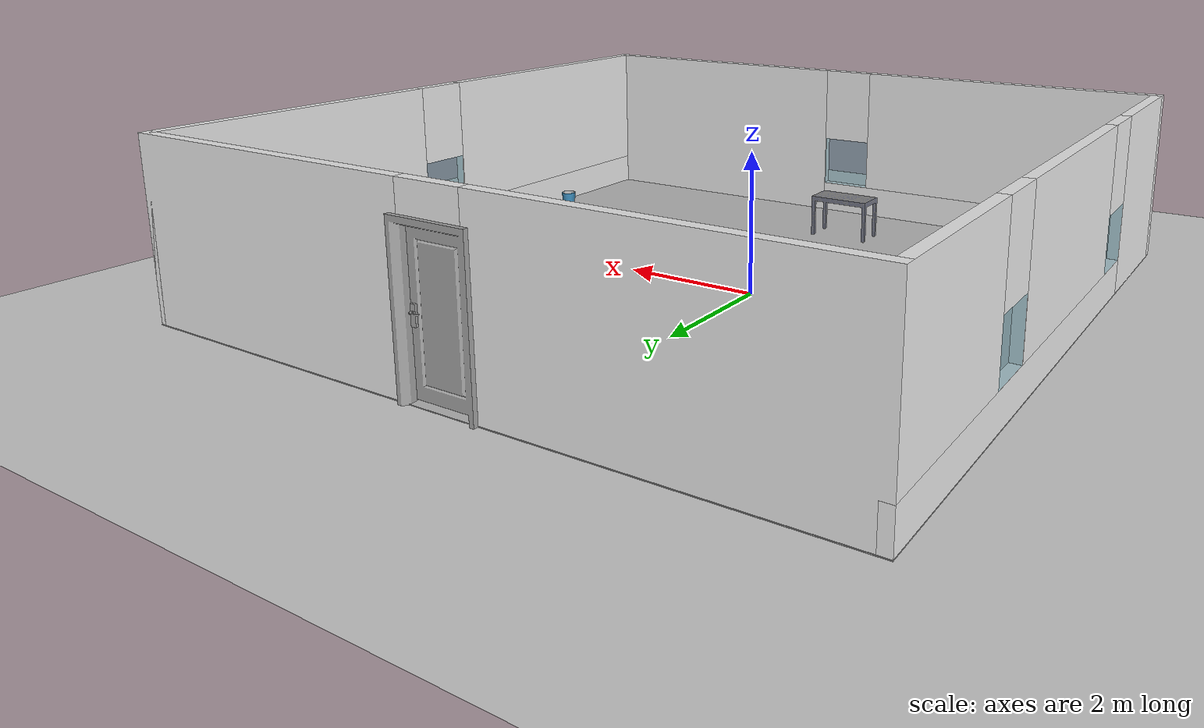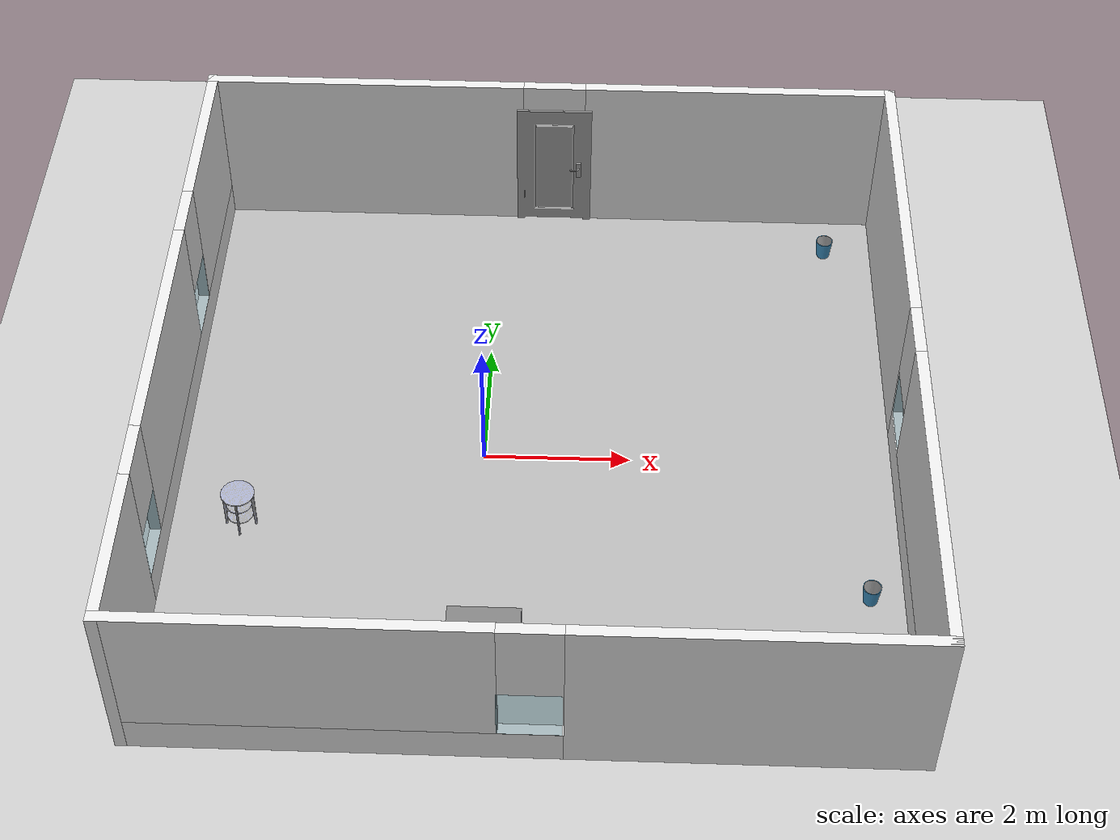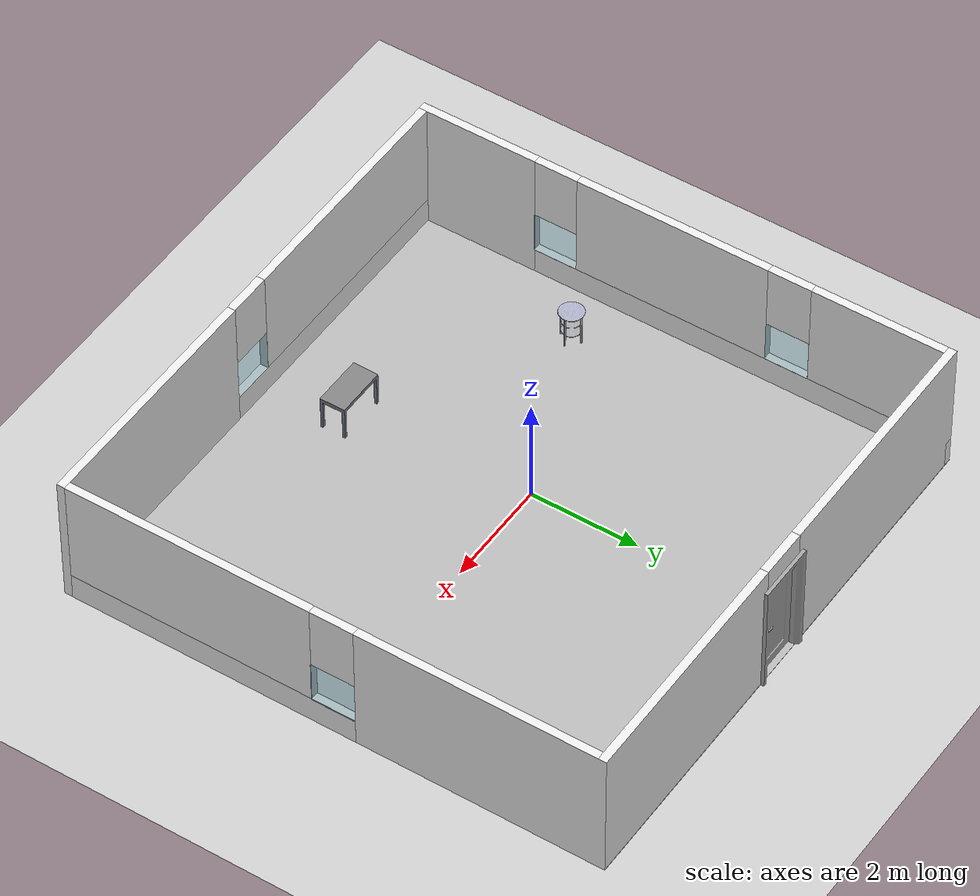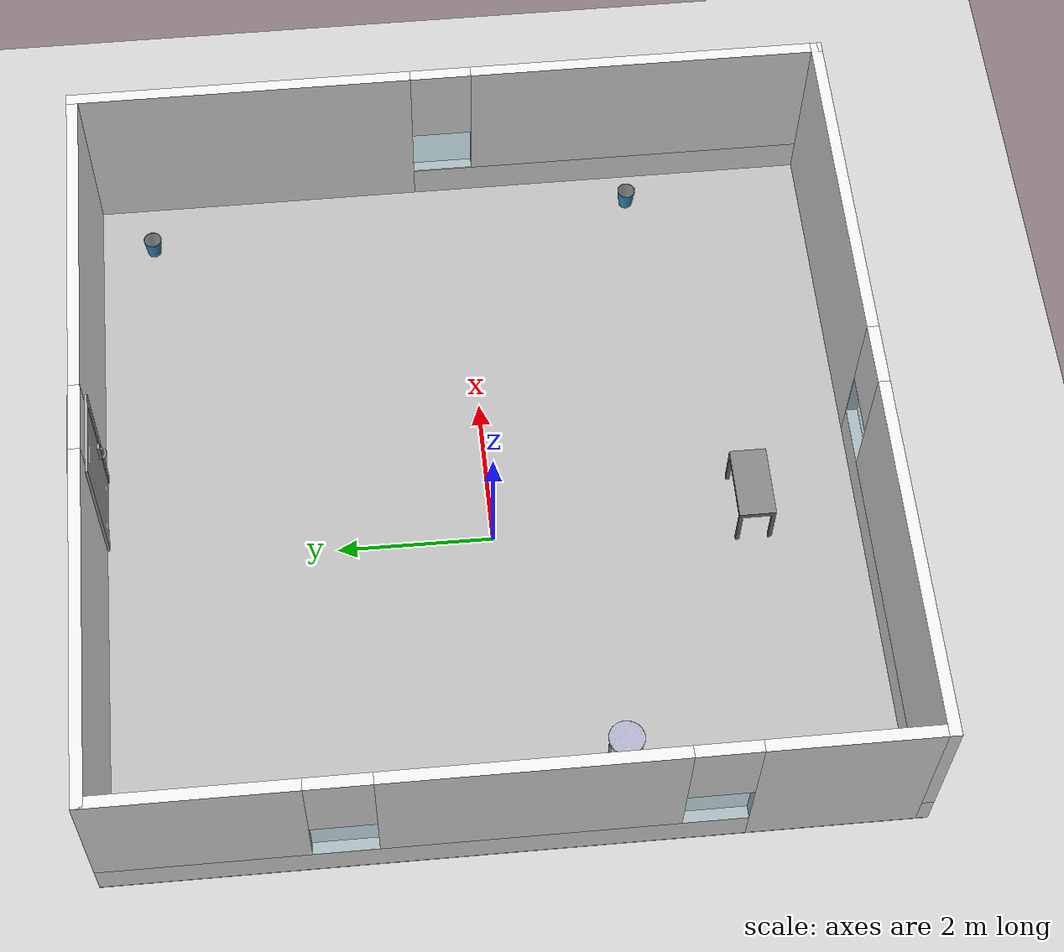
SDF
<sdf version="1.7">
 <world name="default">
  <light name="sun" type="directional">
   <pose>0 0 10 0 -0 0</pose>
   <diffuse>0.8 0.8 0.8 1</diffuse>
   <specular>0.2 0.2 0.2 1</specular>
   <attenuation>
    <range>1000</range>
    <constant>0.9</constant>
    <linear>0.01</linear>
    <quadratic>0.001</quadratic>
   </attenuation>
   <direction>-0.5 0.1 -0.9</direction>
   <spot><inner_angle>0</inner_angle><outer_angle>0</outer_angle><falloff>0</falloff></spot>
  </light>
  <model name="ground_plane">
   <static>1</static>
   <link name="link">
    <collision name="collision">
     <geometry><plane><normal>0 0 1</normal><size>100 100</size></plane></geometry>
     <surface><friction><ode><mu>100</mu><mu2>50</mu2></ode></friction></surface>
    </collision>
    <visual name="visual">
     <cast_shadows>0</cast_shadows>
     <geometry><plane><normal>0 0 1</normal><size>100 100</size></plane></geometry>
     <material>
      <script><uri>file://media/materials/scripts/gazebo.material</uri><name>Gazebo/Grey</name></script>
     </material>
    </visual>
   </link>
  </model>
  <gravity>0 0 -9.8</gravity>
  <magnetic_field>6e-06 2.3e-05 -4.2e-05</magnetic_field>
  <atmosphere type="adiabatic"/>
  <physics type="ode">
   <max_step_size>0.001</max_step_size>
   <real_time_factor>1</real_time_factor>
   <real_time_update_rate>1000</real_time_update_rate>
  </physics>
  <scene><ambient>0.4 0.4 0.4 1</ambient><background>0.7 0.7 0.7 1</background><shadows>1</shadows></scene>
  <audio><device>default</device></audio>
  <spherical_coordinates>
   <surface_model>EARTH_WGS84</surface_model>
   <latitude_deg>0</latitude_deg>
   <longitude_deg>0</longitude_deg>
   <elevation>0</elevation>
   <heading_deg>0</heading_deg>
  </spherical_coordinates>
  <model name="office_small">
   <model name="door_3d">
    <link name="link_1">
     <visual name="visual">
      <geometry><mesh><uri>model://door_3d/meshes/door_v2_door.dae</uri><scale>1 1 1</scale></mesh></geometry>
      <material>
       <script>
        <uri>model://door_3d/materials/scripts</uri>
        <uri>model://door_3d/materials/textures</uri>
        <name>door_3d</name>
       </script>
      </material>
     </visual>
     <collision name="collision">
      <geometry><mesh><uri>model://door_3d/meshes/door_v2_door.dae</uri><scale>1 1 1</scale></mesh></geometry>
     </collision>
    </link>
    <link name="link_2">
     <visual name="visual">
      <geometry><mesh><uri>model://door_3d/meshes/door_v2_handle.dae</uri><scale>1 1 1</scale></mesh></geometry>
      <material>
       <script>
        <uri>model://door_3d/materials/scripts</uri>
        <uri>model://door_3d/materials/textures</uri>
        <name>door_handle</name>
       </script>
      </material>
     </visual>
     <collision name="collision">
      <geometry><mesh><uri>model://door_3d/meshes/door_v2_handle.dae</uri><scale>1 1 1</scale></mesh></geometry>
     </collision>
    </link>
    <static>1</static>
    <pose>0.856135 4.98035 0 0 -0 0</pose>
   </model>
   <model name="office_small">
    <pose>0.796663 0.043102 0 0 -0 0</pose>
    <link name="Wall_2">
     <pose>0 4.925 0 0 -0 0</pose>
     <visual name="Wall_2_Visual_0">
      <pose>-2.69024 0 1.25 0 -0 0</pose>
      <geometry><box><size>4.61951 0.15 2.5</size></box></geometry>
      <material>
       <script>
        <uri>model://office_small/materials/scripts</uri>
        <uri>model://office_small/materials/textures</uri>
        <name>wall_white</name>
       </script>
      </material>
     </visual>
     <collision name="Wall_2_Collision_0">
      <geometry><box><size>4.61951 0.15 2.5</size></box></geometry>
      <pose>-2.69024 0 1.25 0 -0 0</pose>
     </collision>
     <visual name="Wall_2_Visual_1">
      <pose>2.75976 0 1.25 0 -0 0</pose>
      <geometry><box><size>4.48049 0.15 2.5</size></box></geometry>
      <material>
       <script>
        <uri>model://office_small/materials/scripts</uri>
        <uri>model://office_small/materials/textures</uri>
        <name>wall_white</name>
       </script>
      </material>
     </visual>
     <collision name="Wall_2_Collision_1">
      <geometry><box><size>4.48049 0.15 2.5</size></box></geometry>
      <pose>2.75976 0 1.25 0 -0 0</pose>
     </collision>
     <visual name="Wall_2_Visual_2">
      <pose>0.06951 0 2.25 0 -0 0</pose>
      <geometry><box><size>0.9 0.15 0.5</size></box></geometry>
      <material>
       <script>
        <uri>model://office_small/materials/scripts</uri>
        <uri>model://office_small/materials/textures</uri>
        <name>wall_white</name>
       </script>
      </material>
     </visual>
     <collision name="Wall_2_Collision_2">
      <geometry><box><size>0.9 0.15 0.5</size></box></geometry>
      <pose>0.06951 0 2.25 0 -0 0</pose>
     </collision>
    </link>
    <link name="Wall_3">
     <pose>4.925 0 0 0 0 -1.5708</pose>
     <visual name="Wall_3_Visual_0">
      <pose>-2.74228 0 1.25 0 -0 0</pose>
      <geometry><box><size>4.51544 0.15 2.5</size></box></geometry>
      <material>
       <script>
        <uri>model://office_small/materials/scripts</uri>
        <uri>model://office_small/materials/textures</uri>
        <name>wall_white</name>
       </script>
      </material>
     </visual>
     <collision name="Wall_3_Collision_0">
      <geometry><box><size>4.51544 0.15 2.5</size></box></geometry>
      <pose>-2.74228 0 1.25 0 -0 0</pose>
     </collision>
     <visual name="Wall_3_Visual_1">
      <pose>2.25772 0 0.25 0 -0 0</pose>
      <geometry><box><size>5.48456 0.15 0.5</size></box></geometry>
      <material>
       <script>
        <uri>model://office_small/materials/scripts</uri>
        <uri>model://office_small/materials/textures</uri>
        <name>wall_white</name>
       </script>
      </material>
     </visual>
     <collision name="Wall_3_Collision_1">
      <geometry><box><size>5.48456 0.15 0.5</size></box></geometry>
      <pose>2.25772 0 0.25 0 -0 0</pose>
     </collision>
     <visual name="Wall_3_Visual_2">
      <pose>2.65772 0 1.5 0 -0 0</pose>
      <geometry><box><size>4.68456 0.15 2</size></box></geometry>
      <material>
       <script>
        <uri>model://office_small/materials/scripts</uri>
        <uri>model://office_small/materials/textures</uri>
        <name>wall_white</name>
       </script>
      </material>
     </visual>
     <collision name="Wall_3_Collision_2">
      <geometry><box><size>4.68456 0.15 2</size></box></geometry>
      <pose>2.65772 0 1.5 0 -0 0</pose>
     </collision>
     <visual name="Wall_3_Visual_3">
      <pose>-0.084559 0 1.9 0 -0 0</pose>
      <geometry><box><size>0.8 0.15 1.2</size></box></geometry>
      <material>
       <script>
        <uri>model://office_small/materials/scripts</uri>
        <uri>model://office_small/materials/textures</uri>
        <name>wall_white</name>
       </script>
      </material>
     </visual>
     <collision name="Wall_3_Collision_3">
      <geometry><box><size>0.8 0.15 1.2</size></box></geometry>
      <pose>-0.084559 0 1.9 0 -0 0</pose>
     </collision>
    </link>
    <link name="Wall_4">
     <pose>0 -4.925 0 0 -0 3.14159</pose>
     <visual name="Wall_4_Visual_0">
      <pose>-2.74632 0 1.25 0 -0 0</pose>
      <geometry><box><size>4.50736 0.15 2.5</size></box></geometry>
      <material>
       <script>
        <uri>model://office_small/materials/scripts</uri>
        <uri>model://office_small/materials/textures</uri>
        <name>wall_white</name>
       </script>
      </material>
     </visual>
     <collision name="Wall_4_Collision_0">
      <geometry><box><size>4.50736 0.15 2.5</size></box></geometry>
      <pose>-2.74632 0 1.25 0 -0 0</pose>
     </collision>
     <visual name="Wall_4_Visual_1">
      <pose>2.25368 0 0.25 0 -0 0</pose>
      <geometry><box><size>5.49264 0.15 0.5</size></box></geometry>
      <material>
       <script>
        <uri>model://office_small/materials/scripts</uri>
        <uri>model://office_small/materials/textures</uri>
        <name>wall_white</name>
       </script>
      </material>
     </visual>
     <collision name="Wall_4_Collision_1">
      <geometry><box><size>5.49264 0.15 0.5</size></box></geometry>
      <pose>2.25368 0 0.25 0 -0 0</pose>
     </collision>
     <visual name="Wall_4_Visual_2">
      <pose>2.65368 0 1.5 0 -0 0</pose>
      <geometry><box><size>4.69264 0.15 2</size></box></geometry>
      <material>
       <script>
        <uri>model://office_small/materials/scripts</uri>
        <uri>model://office_small/materials/textures</uri>
        <name>wall_white</name>
       </script>
      </material>
     </visual>
     <collision name="Wall_4_Collision_2">
      <geometry><box><size>4.69264 0.15 2</size></box></geometry>
      <pose>2.65368 0 1.5 0 -0 0</pose>
     </collision>
     <visual name="Wall_4_Visual_3">
      <pose>-0.09264 0 1.9 0 -0 0</pose>
      <geometry><box><size>0.8 0.15 1.2</size></box></geometry>
      <material>
       <script>
        <uri>model://office_small/materials/scripts</uri>
        <uri>model://office_small/materials/textures</uri>
        <name>wall_white</name>
       </script>
      </material>
     </visual>
     <collision name="Wall_4_Collision_3">
      <geometry><box><size>0.8 0.15 1.2</size></box></geometry>
      <pose>-0.09264 0 1.9 0 -0 0</pose>
     </collision>
    </link>
    <link name="Wall_5">
     <pose>-4.925 0 0 0 -0 1.5708</pose>
     <visual name="Wall_5_Visual_0">
      <pose>-3.88364 0 1.25 0 -0 0</pose>
      <geometry><box><size>2.23271 0.15 2.5</size></box></geometry>
      <material>
       <script>
        <uri>model://office_small/materials/scripts</uri>
        <uri>model://office_small/materials/textures</uri>
        <name>wall_white</name>
       </script>
      </material>
     </visual>
     <collision name="Wall_5_Collision_0">
      <geometry><box><size>2.23271 0.15 2.5</size></box></geometry>
      <pose>-3.88364 0 1.25 0 -0 0</pose>
     </collision>
     <visual name="Wall_5_Visual_1">
      <pose>1.11636 0 0.25 0 -0 0</pose>
      <geometry><box><size>7.76729 0.15 0.5</size></box></geometry>
      <material>
       <script>
        <uri>model://office_small/materials/scripts</uri>
        <uri>model://office_small/materials/textures</uri>
        <name>wall_white</name>
       </script>
      </material>
     </visual>
     <collision name="Wall_5_Collision_1">
      <geometry><box><size>7.76729 0.15 0.5</size></box></geometry>
      <pose>1.11636 0 0.25 0 -0 0</pose>
     </collision>
     <visual name="Wall_5_Visual_2">
      <pose>-0.169878 0 1.5 0 -0 0</pose>
      <geometry><box><size>3.59482 0.15 2</size></box></geometry>
      <material>
       <script>
        <uri>model://office_small/materials/scripts</uri>
        <uri>model://office_small/materials/textures</uri>
        <name>wall_white</name>
       </script>
      </material>
     </visual>
     <collision name="Wall_5_Collision_2">
      <geometry><box><size>3.59482 0.15 2</size></box></geometry>
      <pose>-0.169878 0 1.5 0 -0 0</pose>
     </collision>
     <visual name="Wall_5_Visual_3">
      <pose>3.71376 0 1.5 0 -0 0</pose>
      <geometry><box><size>2.57247 0.15 2</size></box></geometry>
      <material>
       <script>
        <uri>model://office_small/materials/scripts</uri>
        <uri>model://office_small/materials/textures</uri>
        <name>wall_white</name>
       </script>
      </material>
     </visual>
     <collision name="Wall_5_Collision_3">
      <geometry><box><size>2.57247 0.15 2</size></box></geometry>
      <pose>3.71376 0 1.5 0 -0 0</pose>
     </collision>
     <visual name="Wall_5_Visual_4">
      <pose>-2.36729 0 1.9 0 -0 0</pose>
      <geometry><box><size>0.8 0.15 1.2</size></box></geometry>
      <material>
       <script>
        <uri>model://office_small/materials/scripts</uri>
        <uri>model://office_small/materials/textures</uri>
        <name>wall_white</name>
       </script>
      </material>
     </visual>
     <collision name="Wall_5_Collision_4">
      <geometry><box><size>0.8 0.15 1.2</size></box></geometry>
      <pose>-2.36729 0 1.9 0 -0 0</pose>
     </collision>
     <visual name="Wall_5_Visual_5">
      <pose>2.02753 0 1.9 0 -0 0</pose>
      <geometry><box><size>0.8 0.15 1.2</size></box></geometry>
      <material>
       <script>
        <uri>model://office_small/materials/scripts</uri>
        <uri>model://office_small/materials/textures</uri>
        <name>wall_white</name>
       </script>
      </material>
     </visual>
     <collision name="Wall_5_Collision_5">
      <geometry><box><size>0.8 0.15 1.2</size></box></geometry>
      <pose>2.02753 0 1.9 0 -0 0</pose>
     </collision>
    </link>
    <static>1</static>
   </model>
   <model name="window">
    <link name="link_2">
     <visual name="visual">
      <pose>0 0 0.9 0 -0 0</pose>
      <geometry><box><size>0.8 0.15 0.8</size></box></geometry>
      <material>
       <lighting>1</lighting>
       <ambient>0.1 0.5 0.6 1</ambient>
       <diffuse>0.1 0.5 0.6 1</diffuse>
       <specular>0.01 0.01 0.01 1</specular>
       <emissive>0 0 0 1</emissive>
      </material>
      <transparency>0.7</transparency>
     </visual>
     <collision name="collision">
      <pose>0 0 0.9 0 -0 0</pose>
      <geometry><box><size>0.8 0.15 0.8</size></box></geometry>
     </collision>
    </link>
    <static>1</static>
    <pose>-4.12651 2.07152 0 0 -0 1.5706</pose>
   </model>
   <model name="window_0">
    <link name="link_2">
     <visual name="visual">
      <pose>0 0 0.9 0 -0 0</pose>
      <geometry><box><size>0.8 0.15 0.8</size></box></geometry>
      <material>
       <lighting>1</lighting>
       <ambient>0.1 0.5 0.6 1</ambient>
       <diffuse>0.1 0.5 0.6 1</diffuse>
       <specular>0.01 0.01 0.01 1</specular>
       <emissive>0 0 0 1</emissive>
      </material>
      <transparency>0.7</transparency>
     </visual>
     <collision name="collision">
      <pose>0 0 0.9 0 -0 0</pose>
      <geometry><box><size>0.8 0.15 0.8</size></box></geometry>
     </collision>
    </link>
    <static>1</static>
    <pose>-4.12726 -2.32854 0 0 -0 1.57</pose>
   </model>
   <model name="window_1">
    <link name="link_2">
     <visual name="visual">
      <pose>0 0 0.9 0 -0 0</pose>
      <geometry><box><size>0.8 0.15 0.8</size></box></geometry>
      <material>
       <lighting>1</lighting>
       <ambient>0.1 0.5 0.6 1</ambient>
       <diffuse>0.1 0.5 0.6 1</diffuse>
       <specular>0.01 0.01 0.01 1</specular>
       <emissive>0 0 0 1</emissive>
      </material>
      <transparency>0.7</transparency>
     </visual>
     <collision name="collision">
      <pose>0 0 0.9 0 -0 0</pose>
      <geometry><box><size>0.8 0.15 0.8</size></box></geometry>
     </collision>
    </link>
    <static>1</static>
    <pose>0.875059 -4.88342 0 0 -0 0</pose>
   </model>
   <model name="window_2">
    <link name="link_2">
     <visual name="visual">
      <pose>0 0 0.9 0 -0 0</pose>
      <geometry><box><size>0.8 0.15 0.8</size></box></geometry>
      <material>
       <lighting>1</lighting>
       <ambient>0.1 0.5 0.6 1</ambient>
       <diffuse>0.1 0.5 0.6 1</diffuse>
       <specular>0.01 0.01 0.01 1</specular>
       <emissive>0 0 0 1</emissive>
      </material>
      <transparency>0.7</transparency>
     </visual>
     <collision name="collision">
      <pose>0 0 0.9 0 -0 0</pose>
      <geometry><box><size>0.8 0.15 0.8</size></box></geometry>
     </collision>
    </link>
    <static>1</static>
    <pose>5.73592 0.126978 0 0 -0 1.57</pose>
   </model>
   <model name="Floor">
    <link name="main">
     <pose>0.795 0.05 0.01 0 -0 0</pose>
     <collision name="main_Collision"><geometry><box><size>10 10 0.01</size></box></geometry></collision>
     <visual name="main_Visual">
      <geometry><box><size>10 10 0.01</size></box></geometry>
      <material>
       <script>
        <uri>model://office_small/materials/scripts</uri>
        <uri>model://office_small/materials/textures</uri>
        <name>floor</name>
       </script>
      </material>
     </visual>
    </link>
    <static>1</static>
   </model>
   <static>0</static>
   <pose>-0.065456 0.061534 0 0 -0 0</pose>
  </model>
  <model name="side_table_1">
   <link name="link_1">
    <pose>0.007786 -0.167928 0 0 -0 0</pose>
    <visual name="visual">
     <geometry><mesh><uri>model://side_table_1/meshes/middle.dae</uri><scale>1 1 1</scale></mesh></geometry>
     <material>
      <script>
       <uri>model://side_table_1/materials/scripts</uri>
       <uri>model://side_table_1/materials/textures</uri>
       <name>side_table_1</name>
      </script>
     </material>
    </visual>
    <collision name="collision">
     <geometry><mesh><uri>model://side_table_1/meshes/middle.dae</uri><scale>1 1 1</scale></mesh></geometry>
    </collision>
   </link>
   <link name="link_2">
    <pose>0.007887 -0.167821 0 0 -0 0</pose>
    <visual name="visual">
     <geometry><mesh><uri>model://side_table_1/meshes/leg.dae</uri><scale>1 1 1</scale></mesh></geometry>
     <material>
      <script>
       <uri>model://side_table_1/materials/scripts</uri>
       <uri>model://side_table_1/materials/textures</uri>
       <name>side_table_1</name>
      </script>
     </material>
    </visual>
    <collision name="collision">
     <geometry><mesh><uri>model://side_table_1/meshes/leg.dae</uri><scale>1 1 1</scale></mesh></geometry>
    </collision>
   </link>
   <link name="link_2_clone">
    <pose>0.208023 0.051865 0 0 -0 1.57</pose>
    <visual name="visual">
     <geometry><mesh><uri>model://side_table_1/meshes/leg.dae</uri><scale>1 1 1</scale></mesh></geometry>
     <material>
      <script>
       <uri>model://side_table_1/materials/scripts</uri>
       <uri>model://side_table_1/materials/textures</uri>
       <name>side_table_1</name>
      </script>
     </material>
    </visual>
    <collision name="collision">
     <geometry><mesh><uri>model://side_table_1/meshes/leg.dae</uri><scale>1 1 1</scale></mesh></geometry>
    </collision>
   </link>
   <link name="link_2_clone_0">
    <pose>-0.212235 0.031759 0 0 0 -1.57</pose>
    <visual name="visual">
     <geometry><mesh><uri>model://side_table_1/meshes/leg.dae</uri><scale>1 1 1</scale></mesh></geometry>
     <material>
      <script>
       <uri>model://side_table_1/materials/scripts</uri>
       <uri>model://side_table_1/materials/textures</uri>
       <name>side_table_1</name>
      </script>
     </material>
    </visual>
    <collision name="collision">
     <geometry><mesh><uri>model://side_table_1/meshes/leg.dae</uri><scale>1 1 1</scale></mesh></geometry>
    </collision>
   </link>
   <link name="link_2_clone_clone">
    <pose>-0.011459 0.252125 0 0 -0 3.14</pose>
    <visual name="visual">
     <geometry><mesh><uri>model://side_table_1/meshes/leg.dae</uri><scale>1 1 1</scale></mesh></geometry>
     <material>
      <script>
       <uri>model://side_table_1/materials/scripts</uri>
       <uri>model://side_table_1/materials/textures</uri>
       <name>side_table_1</name>
      </script>
     </material>
    </visual>
    <collision name="collision">
     <geometry><mesh><uri>model://side_table_1/meshes/leg.dae</uri><scale>1 1 1</scale></mesh></geometry>
    </collision>
   </link>
   <static>1</static>
   <pose>-3.17512 -1.37095 0 0 -0 0</pose>
  </model>
  <model name="table_dining">
   <link name="link_24">
    <visual name="visual">
     <geometry><mesh><uri>model://table_dining/meshes/table2.dae</uri><scale>1 1 1</scale></mesh></geometry>
     <material>
      <script>
       <uri>model://table_dining/materials/scripts</uri>
       <uri>model://table_dining/materials/textures</uri>
       <name>dining_table</name>
      </script>
     </material>
    </visual>
    <collision name="collision">
     <geometry><mesh><uri>model://table_dining/meshes/table2.dae</uri><scale>1 1 1</scale></mesh></geometry>
    </collision>
   </link>
   <static>1</static>
   <pose>0.170735 -3.36092 0 0 -0 0</pose>
  </model>
  <model name="trash_bin">
   <link name="link_0">
    <visual name="visual">
     <geometry><mesh><uri>model://trash_bin/meshes/outer.dae</uri><scale>0.6 0.6 0.6</scale></mesh></geometry>
     <material>
      <lighting>1</lighting>
      <ambient>0.235 0.556 0.741 1</ambient>
      <diffuse>0.235 0.556 0.741 1</diffuse>
      <specular>0.01 0.01 0.01 1</specular>
      <emissive>0 0 0 1</emissive>
      <shader type="vertex"><normal_map>__default__</normal_map></shader>
     </material>
    </visual>
    <collision name="collision">
     <geometry><mesh><uri>model://trash_bin/meshes/outer.dae</uri><scale>0.6 0.6 0.6</scale></mesh></geometry>
    </collision>
   </link>
   <link name="link_1">
    <visual name="visual">
     <geometry><mesh><uri>model://trash_bin/meshes/inner.dae</uri><scale>0.6 0.6 0.6</scale></mesh></geometry>
     <material>
      <lighting>1</lighting>
      <ambient>0.9 0.9 0.9 1</ambient>
      <diffuse>0.7 0.7 0.7 1</diffuse>
      <specular>0.01 0.01 0.01 1</specular>
      <emissive>0 0 0 1</emissive>
      <shader type="vertex"><normal_map>__default__</normal_map></shader>
     </material>
    </visual>
    <collision name="collision">
     <geometry><mesh><uri>model://trash_bin/meshes/inner.dae</uri><scale>0.6 0.6 0.6</scale></mesh></geometry>
    </collision>
   </link>
   <static>1</static>
   <pose>5.13649 -2.33491 0 0 -0 0</pose>
  </model>
  <model name="trash_bin_0">
   <link name="link_0">
    <visual name="visual">
     <geometry><mesh><uri>model://trash_bin/meshes/outer.dae</uri><scale>0.6 0.6 0.6</scale></mesh></geometry>
     <material>
      <lighting>1</lighting>
      <ambient>0.235 0.556 0.741 1</ambient>
      <diffuse>0.235 0.556 0.741 1</diffuse>
      <specular>0.01 0.01 0.01 1</specular>
      <emissive>0 0 0 1</emissive>
      <shader type="vertex"><normal_map>__default__</normal_map></shader>
     </material>
    </visual>
    <collision name="collision">
     <geometry><mesh><uri>model://trash_bin/meshes/outer.dae</uri><scale>0.6 0.6 0.6</scale></mesh></geometry>
    </collision>
   </link>
   <link name="link_1">
    <visual name="visual">
     <geometry><mesh><uri>model://trash_bin/meshes/inner.dae</uri><scale>0.6 0.6 0.6</scale></mesh></geometry>
     <material>
      <lighting>1</lighting>
      <ambient>0.9 0.9 0.9 1</ambient>
      <diffuse>0.7 0.7 0.7 1</diffuse>
      <specular>0.01 0.01 0.01 1</specular>
      <emissive>0 0 0 1</emissive>
      <shader type="vertex"><normal_map>__default__</normal_map></shader>
     </material>
    </visual>
    <collision name="collision">
     <geometry><mesh><uri>model://trash_bin/meshes/inner.dae</uri><scale>0.6 0.6 0.6</scale></mesh></geometry>
    </collision>
   </link>
   <static>1</static>
   <pose>4.88818 4.24753 0 0 -0 0</pose>
  </model>
 </world>
</sdf>
